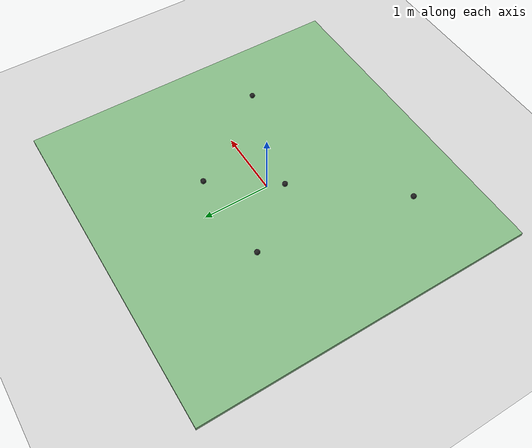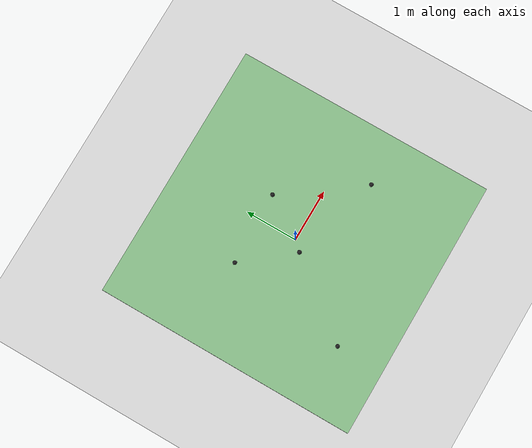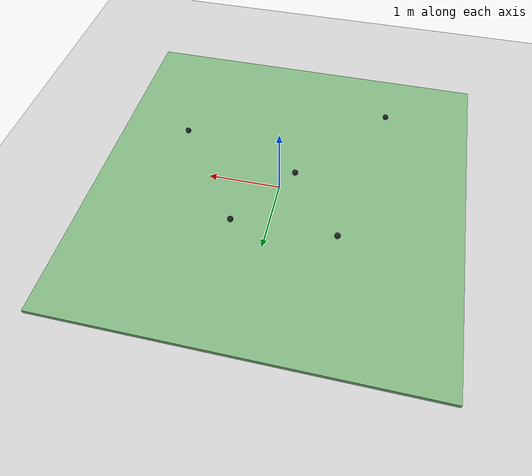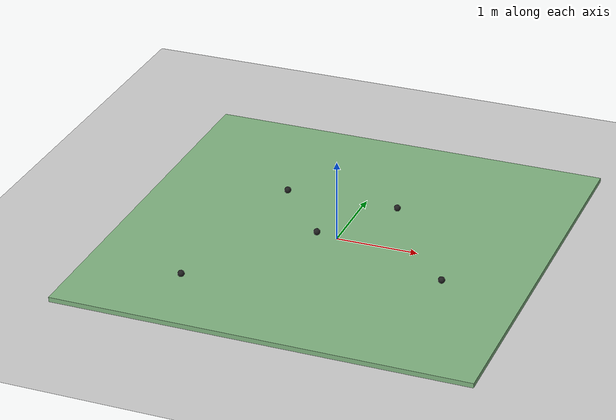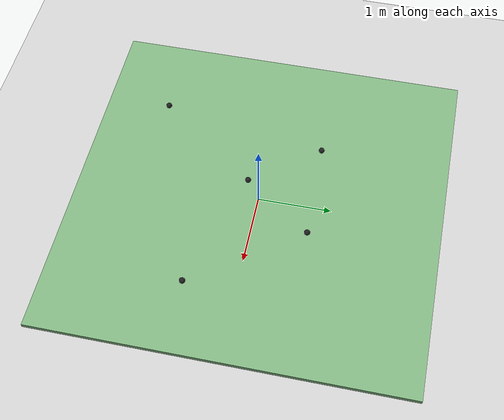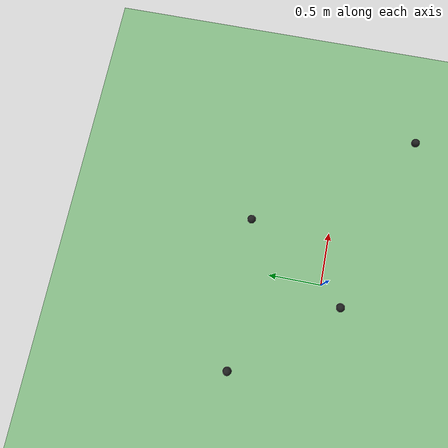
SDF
<sdf version="1.6">
 <world name="default">
  <light name="sun" type="directional">
   <pose>0 0 10 0 -0 0</pose>
   <diffuse>0.8 0.8 0.8 1</diffuse>
   <specular>0.2 0.2 0.2 1</specular>
   <attenuation>
    <range>1000</range>
    <constant>0.9</constant>
    <linear>0.01</linear>
    <quadratic>0.001</quadratic>
   </attenuation>
   <direction>-0.5 0.1 -0.9</direction>
  </light>
  <model name="ground_plane">
   <static>1</static>
   <link name="link">
    <collision name="collision">
     <geometry><plane><normal>0 0 1</normal><size>100 100</size></plane></geometry>
     <surface>
      <contact><collide_bitmask>65535</collide_bitmask></contact>
      <friction><ode><mu>100</mu><mu2>50</mu2></ode></friction>
     </surface>
    </collision>
    <visual name="visual">
     <cast_shadows>0</cast_shadows>
     <geometry><plane><normal>0 0 1</normal><size>100 100</size></plane></geometry>
     <material>
      <script><uri>file://media/materials/scripts/gazebo.material</uri><name>Gazebo/Grey</name></script>
     </material>
    </visual>
   </link>
  </model>
  <gravity>0 0 -9.8</gravity>
  <magnetic_field>6e-06 2.3e-05 -4.2e-05</magnetic_field>
  <atmosphere type="adiabatic"/>
  <physics name="default_physics" default="0" type="ode">
   <max_step_size>0.001</max_step_size>
   <real_time_factor>1</real_time_factor>
   <real_time_update_rate>1000</real_time_update_rate>
  </physics>
  <scene><ambient>0.4 0.4 0.4 1</ambient><background>0.7 0.7 0.7 1</background><shadows>1</shadows></scene>
  <audio><device>default</device></audio>
  <spherical_coordinates>
   <surface_model>EARTH_WGS84</surface_model>
   <latitude_deg>0</latitude_deg>
   <longitude_deg>0</longitude_deg>
   <elevation>0</elevation>
   <heading_deg>0</heading_deg>
  </spherical_coordinates>
  <model name="golf_ball">
   <link name="link">
    <inertial>
     <mass>0.25</mass>
     <inertia><ixx>0.001</ixx><ixy>0</ixy><ixz>0</ixz><iyy>0.001</iyy><iyz>0</iyz><izz>0.001</izz></inertia>
    </inertial>
    <velocity_decay><linear>0</linear><angular>0</angular></velocity_decay>
    <visual name="visual">
     <geometry><sphere><radius>0.04</radius></sphere></geometry>
     <material>
      <script><uri>file://media/materials/scripts/gazebo.material</uri><name>Gazebo/Black</name></script>
      <shader type="vertex"><normal_map>__default__</normal_map></shader>
      <ambient>0.3 0.3 0.3 1</ambient>
      <diffuse>0.7 0.7 0.7 1</diffuse>
      <specular>0.01 0.01 0.01 1</specular>
      <emissive>0 0 0 1</emissive>
     </material>
    </visual>
    <collision name="collision">
     <geometry><box><size>0.06 0.06 0.15</size></box></geometry>
     <surface>
      <friction>
       <ode><mu>30</mu><mu2>30</mu2><fdir1>0 0 0</fdir1><slip1>0</slip1><slip2>0</slip2></ode>
       <torsional>
        <coefficient>1</coefficient>
        <patch_radius>0</patch_radius>
        <surface_radius>0</surface_radius>
        <use_patch_radius>1</use_patch_radius>
        <ode><slip>0</slip></ode>
       </torsional>
      </friction>
      <bounce><restitution_coefficient>0</restitution_coefficient><threshold>1e+06</threshold></bounce>
      <contact>
       <collide_without_contact>0</collide_without_contact>
       <collide_without_contact_bitmask>1</collide_without_contact_bitmask>
       <collide_bitmask>1</collide_bitmask>
       <ode>
        <soft_cfm>0</soft_cfm>
        <soft_erp>0.2</soft_erp>
        <kp>1e+06</kp>
        <kd>100</kd>
        <max_vel>1</max_vel>
        <min_depth>0.002</min_depth>
       </ode>
       <bullet>
        <split_impulse>1</split_impulse>
        <split_impulse_penetration_threshold>-0.01</split_impulse_penetration_threshold>
        <soft_cfm>0</soft_cfm>
        <soft_erp>0.2</soft_erp>
        <kp>1e+06</kp>
        <kd>100</kd>
       </bullet>
      </contact>
     </surface>
    </collision>
   </link>
   <static>0</static>
   <pose>-0.182196 -0.184107 0.152971 -1e-05 -0.237007 -0.916462</pose>
  </model>
  <model name="golf_ball_clone">
   <link name="link">
    <inertial>
     <mass>0.25</mass>
     <inertia><ixx>0.001</ixx><ixy>0</ixy><ixz>0</ixz><iyy>0.001</iyy><iyz>0</iyz><izz>0.001</izz></inertia>
    </inertial>
    <velocity_decay><linear>0</linear><angular>0</angular></velocity_decay>
    <visual name="visual">
     <geometry><sphere><radius>0.04</radius></sphere></geometry>
     <material>
      <script><uri>file://media/materials/scripts/gazebo.material</uri><name>Gazebo/Black</name></script>
      <shader type="vertex"><normal_map>__default__</normal_map></shader>
      <ambient>0.3 0.3 0.3 1</ambient>
      <diffuse>0.7 0.7 0.7 1</diffuse>
      <specular>0.01 0.01 0.01 1</specular>
      <emissive>0 0 0 1</emissive>
     </material>
    </visual>
    <collision name="collision">
     <geometry><box><size>0.06 0.06 0.15</size></box></geometry>
     <surface>
      <friction>
       <ode><mu>30</mu><mu2>30</mu2><fdir1>0 0 0</fdir1><slip1>0</slip1><slip2>0</slip2></ode>
       <torsional>
        <coefficient>1</coefficient>
        <patch_radius>0</patch_radius>
        <surface_radius>0</surface_radius>
        <use_patch_radius>1</use_patch_radius>
        <ode><slip>0</slip></ode>
       </torsional>
      </friction>
      <bounce><restitution_coefficient>0</restitution_coefficient><threshold>1e+06</threshold></bounce>
      <contact>
       <collide_without_contact>0</collide_without_contact>
       <collide_without_contact_bitmask>1</collide_without_contact_bitmask>
       <collide_bitmask>1</collide_bitmask>
       <ode>
        <soft_cfm>0</soft_cfm>
        <soft_erp>0.2</soft_erp>
        <kp>1e+06</kp>
        <kd>100</kd>
        <max_vel>1</max_vel>
        <min_depth>0.002</min_depth>
       </ode>
       <bullet>
        <split_impulse>1</split_impulse>
        <split_impulse_penetration_threshold>-0.01</split_impulse_penetration_threshold>
        <soft_cfm>0</soft_cfm>
        <soft_erp>0.2</soft_erp>
        <kp>1e+06</kp>
        <kd>100</kd>
       </bullet>
      </contact>
     </surface>
    </collision>
   </link>
   <static>0</static>
   <pose>-0.911252 0.713702 0.122999 0 -0 0</pose>
  </model>
  <model name="golf_ball_clone_0">
   <link name="link">
    <inertial>
     <mass>0.25</mass>
     <inertia><ixx>0.001</ixx><ixy>0</ixy><ixz>0</ixz><iyy>0.001</iyy><iyz>0</iyz><izz>0.001</izz></inertia>
    </inertial>
    <velocity_decay><linear>0</linear><angular>0</angular></velocity_decay>
    <visual name="visual">
     <geometry><sphere><radius>0.04</radius></sphere></geometry>
     <material>
      <script><uri>file://media/materials/scripts/gazebo.material</uri><name>Gazebo/Black</name></script>
      <shader type="vertex"><normal_map>__default__</normal_map></shader>
      <ambient>0.3 0.3 0.3 1</ambient>
      <diffuse>0.7 0.7 0.7 1</diffuse>
      <specular>0.01 0.01 0.01 1</specular>
      <emissive>0 0 0 1</emissive>
     </material>
    </visual>
    <collision name="collision">
     <geometry><box><size>0.06 0.06 0.15</size></box></geometry>
     <surface>
      <friction>
       <ode><mu>30</mu><mu2>30</mu2><fdir1>0 0 0</fdir1><slip1>0</slip1><slip2>0</slip2></ode>
       <torsional>
        <coefficient>1</coefficient>
        <patch_radius>0</patch_radius>
        <surface_radius>0</surface_radius>
        <use_patch_radius>1</use_patch_radius>
        <ode><slip>0</slip></ode>
       </torsional>
      </friction>
      <bounce><restitution_coefficient>0</restitution_coefficient><threshold>1e+06</threshold></bounce>
      <contact>
       <collide_without_contact>0</collide_without_contact>
       <collide_without_contact_bitmask>1</collide_without_contact_bitmask>
       <collide_bitmask>1</collide_bitmask>
       <ode>
        <soft_cfm>0</soft_cfm>
        <soft_erp>0.2</soft_erp>
        <kp>1e+06</kp>
        <kd>100</kd>
        <max_vel>1</max_vel>
        <min_depth>0.002</min_depth>
       </ode>
       <bullet>
        <split_impulse>1</split_impulse>
        <split_impulse_penetration_threshold>-0.01</split_impulse_penetration_threshold>
        <soft_cfm>0</soft_cfm>
        <soft_erp>0.2</soft_erp>
        <kp>1e+06</kp>
        <kd>100</kd>
       </bullet>
      </contact>
     </surface>
    </collision>
   </link>
   <static>0</static>
   <pose>0.478332 0.75307 0.122999 0 -0 0</pose>
  </model>
  <model name="golf_ball_clone_1">
   <link name="link">
    <inertial>
     <mass>0.25</mass>
     <inertia><ixx>0.001</ixx><ixy>0</ixy><ixz>0</ixz><iyy>0.001</iyy><iyz>0</iyz><izz>0.001</izz></inertia>
    </inertial>
    <velocity_decay><linear>0</linear><angular>0</angular></velocity_decay>
    <visual name="visual">
     <geometry><sphere><radius>0.04</radius></sphere></geometry>
     <material>
      <script><uri>file://media/materials/scripts/gazebo.material</uri><name>Gazebo/Black</name></script>
      <shader type="vertex"><normal_map>__default__</normal_map></shader>
      <ambient>0.3 0.3 0.3 1</ambient>
      <diffuse>0.7 0.7 0.7 1</diffuse>
      <specular>0.01 0.01 0.01 1</specular>
      <emissive>0 0 0 1</emissive>
     </material>
    </visual>
    <collision name="collision">
     <geometry><box><size>0.06 0.06 0.15</size></box></geometry>
     <surface>
      <friction>
       <ode><mu>30</mu><mu2>30</mu2><fdir1>0 0 0</fdir1><slip1>0</slip1><slip2>0</slip2></ode>
       <torsional>
        <coefficient>1</coefficient>
        <patch_radius>0</patch_radius>
        <surface_radius>0</surface_radius>
        <use_patch_radius>1</use_patch_radius>
        <ode><slip>0</slip></ode>
       </torsional>
      </friction>
      <bounce><restitution_coefficient>0</restitution_coefficient><threshold>1e+06</threshold></bounce>
      <contact>
       <collide_without_contact>0</collide_without_contact>
       <collide_without_contact_bitmask>1</collide_without_contact_bitmask>
       <collide_bitmask>1</collide_bitmask>
       <ode>
        <soft_cfm>0</soft_cfm>
        <soft_erp>0.2</soft_erp>
        <kp>1e+06</kp>
        <kd>100</kd>
        <max_vel>1</max_vel>
        <min_depth>0.002</min_depth>
       </ode>
       <bullet>
        <split_impulse>1</split_impulse>
        <split_impulse_penetration_threshold>-0.01</split_impulse_penetration_threshold>
        <soft_cfm>0</soft_cfm>
        <soft_erp>0.2</soft_erp>
        <kp>1e+06</kp>
        <kd>100</kd>
       </bullet>
      </contact>
     </surface>
    </collision>
   </link>
   <static>0</static>
   <pose>1.52086 -0.679262 0.122999 0 -0 0</pose>
  </model>
  <model name="golf_ball_clone_2">
   <link name="link">
    <inertial>
     <mass>0.25</mass>
     <inertia><ixx>0.001</ixx><ixy>0</ixy><ixz>0</ixz><iyy>0.001</iyy><iyz>0</iyz><izz>0.001</izz></inertia>
    </inertial>
    <velocity_decay><linear>0</linear><angular>0</angular></velocity_decay>
    <visual name="visual">
     <geometry><sphere><radius>0.04</radius></sphere></geometry>
     <material>
      <script><uri>file://media/materials/scripts/gazebo.material</uri><name>Gazebo/Black</name></script>
      <shader type="vertex"><normal_map>__default__</normal_map></shader>
      <ambient>0.3 0.3 0.3 1</ambient>
      <diffuse>0.7 0.7 0.7 1</diffuse>
      <specular>0.01 0.01 0.01 1</specular>
      <emissive>0 0 0 1</emissive>
     </material>
    </visual>
    <collision name="collision">
     <geometry><box><size>0.06 0.06 0.15</size></box></geometry>
     <surface>
      <friction>
       <ode><mu>30</mu><mu2>30</mu2><fdir1>0 0 0</fdir1><slip1>0</slip1><slip2>0</slip2></ode>
       <torsional>
        <coefficient>1</coefficient>
        <patch_radius>0</patch_radius>
        <surface_radius>0</surface_radius>
        <use_patch_radius>1</use_patch_radius>
        <ode><slip>0</slip></ode>
       </torsional>
      </friction>
      <bounce><restitution_coefficient>0</restitution_coefficient><threshold>1e+06</threshold></bounce>
      <contact>
       <collide_without_contact>0</collide_without_contact>
       <collide_without_contact_bitmask>1</collide_without_contact_bitmask>
       <collide_bitmask>1</collide_bitmask>
       <ode>
        <soft_cfm>0</soft_cfm>
        <soft_erp>0.2</soft_erp>
        <kp>1e+06</kp>
        <kd>100</kd>
        <max_vel>1</max_vel>
        <min_depth>0.002</min_depth>
       </ode>
       <bullet>
        <split_impulse>1</split_impulse>
        <split_impulse_penetration_threshold>-0.01</split_impulse_penetration_threshold>
        <soft_cfm>0</soft_cfm>
        <soft_erp>0.2</soft_erp>
        <kp>1e+06</kp>
        <kd>100</kd>
       </bullet>
      </contact>
     </surface>
    </collision>
   </link>
   <static>0</static>
   <pose>-1.28083 -1.59431 0.122999 0 -0 0</pose>
  </model>
  <model name="asphalt_plane_0">
   <link name="link">
    <inertial>
     <mass>1</mass>
     <inertia><ixx>1</ixx><ixy>0</ixy><ixz>0</ixz><iyy>1</iyy><iyz>0</iyz><izz>1</izz></inertia>
    </inertial>
    <visual name="visual">
     <cast_shadows>0</cast_shadows>
     <geometry><box><size>5 5 0.1</size></box></geometry>
     <material>
      <shader type="vertex"><normal_map>__default__</normal_map></shader>
      <ambient>0.5 0.7 0.5 1</ambient>
      <diffuse>0.5 0.7 0.5 1</diffuse>
      <specular>0.2 0.7 0.2 1</specular>
      <emissive>0 0.7 0 1</emissive>
     </material>
    </visual>
    <collision name="collision">
     <geometry><box><size>5 5 0.1</size></box></geometry>
     <surface>
      <friction>
       <ode><mu>1</mu><mu2>1</mu2><fdir1>0 0 0</fdir1><slip1>0</slip1><slip2>0</slip2></ode>
       <torsional>
        <coefficient>1</coefficient>
        <patch_radius>0</patch_radius>
        <surface_radius>0</surface_radius>
        <use_patch_radius>1</use_patch_radius>
        <ode><slip>0</slip></ode>
       </torsional>
      </friction>
      <bounce><restitution_coefficient>0</restitution_coefficient><threshold>1e+06</threshold></bounce>
      <contact>
       <collide_without_contact>0</collide_without_contact>
       <collide_without_contact_bitmask>1</collide_without_contact_bitmask>
       <collide_bitmask>1</collide_bitmask>
       <ode>
        <soft_cfm>0</soft_cfm>
        <soft_erp>0.2</soft_erp>
        <kp>1e+13</kp>
        <kd>1</kd>
        <max_vel>0.01</max_vel>
        <min_depth>0</min_depth>
       </ode>
       <bullet>
        <split_impulse>1</split_impulse>
        <split_impulse_penetration_threshold>-0.01</split_impulse_penetration_threshold>
        <soft_cfm>0</soft_cfm>
        <soft_erp>0.2</soft_erp>
        <kp>1e+13</kp>
        <kd>1</kd>
       </bullet>
      </contact>
     </surface>
    </collision>
   </link>
   <static>1</static>
  </model>
 </world>
</sdf>
